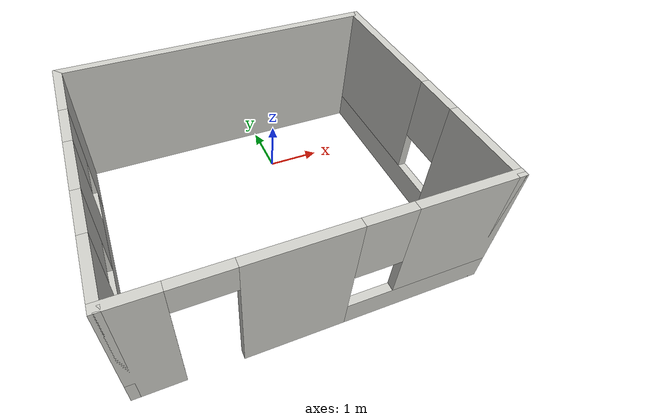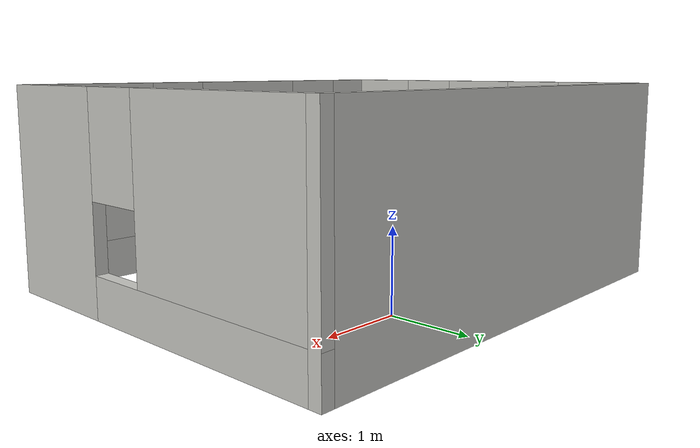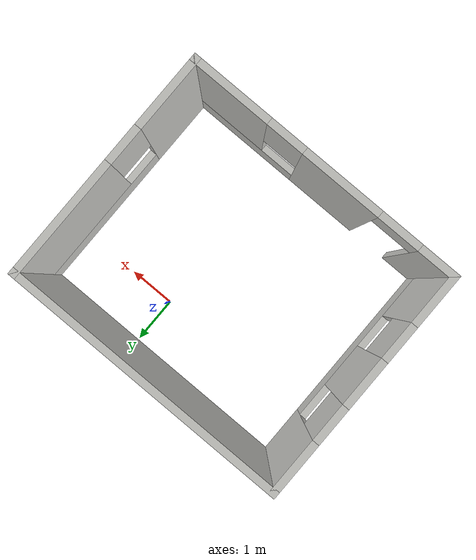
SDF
<?xml version='1.0'?>
<sdf version='1.6'>
  <model name='House'>
    <pose frame=''>-0.705 -1.305 0 0 -0 0</pose>
    <link name='Wall_0'>
      <pose frame=''>0 -2.425 0 0 -0 0</pose>
      <visual name='Wall_0_Visual_0'>
        <pose frame=''>-2.57683 0 1.25 0 -0 0</pose>
        <geometry>
          <box>
            <size>0.846347 0.15 2.5</size>
          </box>
        </geometry>
        <material>
          <script>
            <uri>file://media/materials/scripts/gazebo.material</uri>
            <name>Gazebo/CeilingTiled</name>
          </script>
          <ambient>0.435294 0.796078 0.67451 1</ambient>
        </material>
      </visual>
      <collision name='Wall_0_Collision_0'>
        <geometry>
          <box>
            <size>0.846347 0.15 2.5</size>
          </box>
        </geometry>
        <pose frame=''>-2.57683 0 1.25 0 -0 0</pose>
      </collision>
      <visual name='Wall_0_Visual_1'>
        <pose frame=''>-0.402153 0 1.25 0 -0 0</pose>
        <geometry>
          <box>
            <size>1.703 0.15 2.5</size>
          </box>
        </geometry>
        <material>
          <script>
            <uri>file://media/materials/scripts/gazebo.material</uri>
            <name>Gazebo/CeilingTiled</name>
          </script>
          <ambient>0.435294 0.796078 0.67451 1</ambient>
        </material>
      </visual>
      <collision name='Wall_0_Collision_1'>
        <geometry>
          <box>
            <size>1.703 0.15 2.5</size>
          </box>
        </geometry>
        <pose frame=''>-0.402153 0 1.25 0 -0 0</pose>
      </collision>
      <visual name='Wall_0_Visual_2'>
        <pose frame=''>1.72467 0 0.25 0 -0 0</pose>
        <geometry>
          <box>
            <size>2.55065 0.15 0.5</size>
          </box>
        </geometry>
        <material>
          <script>
            <uri>file://media/materials/scripts/gazebo.material</uri>
            <name>Gazebo/CeilingTiled</name>
          </script>
          <ambient>0.435294 0.796078 0.67451 1</ambient>
        </material>
      </visual>
      <collision name='Wall_0_Collision_2'>
        <geometry>
          <box>
            <size>2.55065 0.15 0.5</size>
          </box>
        </geometry>
        <pose frame=''>1.72467 0 0.25 0 -0 0</pose>
      </collision>
      <visual name='Wall_0_Visual_3'>
        <pose frame=''>2.12467 0 1.5 0 -0 0</pose>
        <geometry>
          <box>
            <size>1.75065 0.15 2</size>
          </box>
        </geometry>
        <material>
          <script>
            <uri>file://media/materials/scripts/gazebo.material</uri>
            <name>Gazebo/CeilingTiled</name>
          </script>
          <ambient>0.435294 0.796078 0.67451 1</ambient>
        </material>
      </visual>
      <collision name='Wall_0_Collision_3'>
        <geometry>
          <box>
            <size>1.75065 0.15 2</size>
          </box>
        </geometry>
        <pose frame=''>2.12467 0 1.5 0 -0 0</pose>
      </collision>
      <visual name='Wall_0_Visual_4'>
        <pose frame=''>0.849347 0 1.9 0 -0 0</pose>
        <geometry>
          <box>
            <size>0.8 0.15 1.2</size>
          </box>
        </geometry>
        <material>
          <script>
            <uri>file://media/materials/scripts/gazebo.material</uri>
            <name>Gazebo/CeilingTiled</name>
          </script>
          <ambient>0.435294 0.796078 0.67451 1</ambient>
        </material>
      </visual>
      <collision name='Wall_0_Collision_4'>
        <geometry>
          <box>
            <size>0.8 0.15 1.2</size>
          </box>
        </geometry>
        <pose frame=''>0.849347 0 1.9 0 -0 0</pose>
      </collision>
      <visual name='Wall_0_Visual_5'>
        <pose frame=''>-1.70365 0 2.25 0 -0 0</pose>
        <geometry>
          <box>
            <size>0.9 0.15 0.5</size>
          </box>
        </geometry>
        <material>
          <script>
            <uri>file://media/materials/scripts/gazebo.material</uri>
            <name>Gazebo/CeilingTiled</name>
          </script>
          <ambient>0.435294 0.796078 0.67451 1</ambient>
        </material>
      </visual>
      <collision name='Wall_0_Collision_5'>
        <geometry>
          <box>
            <size>0.9 0.15 0.5</size>
          </box>
        </geometry>
        <pose frame=''>-1.70365 0 2.25 0 -0 0</pose>
      </collision>
    </link>
    <link name='Wall_1'>
      <pose frame=''>2.925 0 0 0 -0 1.5708</pose>
      <visual name='Wall_1_Visual_0'>
        <pose frame=''>-1.69181 0 1.25 0 -0 0</pose>
        <geometry>
          <box>
            <size>1.61638 0.15 2.5</size>
          </box>
        </geometry>
        <material>
          <script>
            <uri>file://media/materials/scripts/gazebo.material</uri>
            <name>Gazebo/CeilingTiled</name>
          </script>
          <ambient>0.996078 0.47451 0.0196078 1</ambient>
        </material>
      </visual>
      <collision name='Wall_1_Collision_0'>
        <geometry>
          <box>
            <size>1.61638 0.15 2.5</size>
          </box>
        </geometry>
        <pose frame=''>-1.69181 0 1.25 0 -0 0</pose>
      </collision>
      <visual name='Wall_1_Visual_1'>
        <pose frame=''>0.808191 0 0.25 0 -0 0</pose>
        <geometry>
          <box>
            <size>3.38362 0.15 0.5</size>
          </box>
        </geometry>
        <material>
          <script>
            <uri>file://media/materials/scripts/gazebo.material</uri>
            <name>Gazebo/CeilingTiled</name>
          </script>
          <ambient>0.996078 0.47451 0.0196078 1</ambient>
        </material>
      </visual>
      <collision name='Wall_1_Collision_1'>
        <geometry>
          <box>
            <size>3.38362 0.15 0.5</size>
          </box>
        </geometry>
        <pose frame=''>0.808191 0 0.25 0 -0 0</pose>
      </collision>
      <visual name='Wall_1_Visual_2'>
        <pose frame=''>1.20819 0 1.5 0 -0 0</pose>
        <geometry>
          <box>
            <size>2.58362 0.15 2</size>
          </box>
        </geometry>
        <material>
          <script>
            <uri>file://media/materials/scripts/gazebo.material</uri>
            <name>Gazebo/CeilingTiled</name>
          </script>
          <ambient>0.996078 0.47451 0.0196078 1</ambient>
        </material>
      </visual>
      <collision name='Wall_1_Collision_2'>
        <geometry>
          <box>
            <size>2.58362 0.15 2</size>
          </box>
        </geometry>
        <pose frame=''>1.20819 0 1.5 0 -0 0</pose>
      </collision>
      <visual name='Wall_1_Visual_3'>
        <pose frame=''>-0.483617 0 1.9 0 -0 0</pose>
        <geometry>
          <box>
            <size>0.8 0.15 1.2</size>
          </box>
        </geometry>
        <material>
          <script>
            <uri>file://media/materials/scripts/gazebo.material</uri>
            <name>Gazebo/CeilingTiled</name>
          </script>
          <ambient>0.996078 0.47451 0.0196078 1</ambient>
        </material>
      </visual>
      <collision name='Wall_1_Collision_3'>
        <geometry>
          <box>
            <size>0.8 0.15 1.2</size>
          </box>
        </geometry>
        <pose frame=''>-0.483617 0 1.9 0 -0 0</pose>
      </collision>
    </link>
    <link name='Wall_2'>
      <collision name='Wall_2_Collision'>
        <geometry>
          <box>
            <size>6 0.15 2.5</size>
          </box>
        </geometry>
        <pose frame=''>0 0 1.25 0 -0 0</pose>
      </collision>
      <visual name='Wall_2_Visual'>
        <pose frame=''>0 0 1.25 0 -0 0</pose>
        <geometry>
          <box>
            <size>6 0.15 2.5</size>
          </box>
        </geometry>
        <material>
          <script>
            <uri>file://media/materials/scripts/gazebo.material</uri>
            <name>Gazebo/CeilingTiled</name>
          </script>
          <ambient>1 1 1 1</ambient>
        </material>
      </visual>
      <pose frame=''>0 2.425 0 0 -0 3.14159</pose>
    </link>
    <link name='Wall_4'>
      <pose frame=''>-2.925 0 0 0 0 -1.5708</pose>
      <visual name='Wall_4_Visual_0'>
        <pose frame=''>-1.90043 0 1.25 0 -0 0</pose>
        <geometry>
          <box>
            <size>1.19914 0.15 2.5</size>
          </box>
        </geometry>
        <material>
          <script>
            <uri>file://media/materials/scripts/gazebo.material</uri>
            <name>Gazebo/CeilingTiled</name>
          </script>
          <ambient>1 1 1 1</ambient>
        </material>
      </visual>
      <collision name='Wall_4_Collision_0'>
        <geometry>
          <box>
            <size>1.19914 0.15 2.5</size>
          </box>
        </geometry>
        <pose frame=''>-1.90043 0 1.25 0 -0 0</pose>
      </collision>
      <visual name='Wall_4_Visual_1'>
        <pose frame=''>0.599571 0 0.25 0 -0 0</pose>
        <geometry>
          <box>
            <size>3.80086 0.15 0.5</size>
          </box>
        </geometry>
        <material>
          <script>
            <uri>file://media/materials/scripts/gazebo.material</uri>
            <name>Gazebo/CeilingTiled</name>
          </script>
          <ambient>1 1 1 1</ambient>
        </material>
      </visual>
      <collision name='Wall_4_Collision_1'>
        <geometry>
          <box>
            <size>3.80086 0.15 0.5</size>
          </box>
        </geometry>
        <pose frame=''>0.599571 0 0.25 0 -0 0</pose>
      </collision>
      <visual name='Wall_4_Visual_2'>
        <pose frame=''>0.019143 0 1.5 0 -0 0</pose>
        <geometry>
          <box>
            <size>1.04 0.15 2</size>
          </box>
        </geometry>
        <material>
          <script>
            <uri>file://media/materials/scripts/gazebo.material</uri>
            <name>Gazebo/CeilingTiled</name>
          </script>
          <ambient>1 1 1 1</ambient>
        </material>
      </visual>
      <collision name='Wall_4_Collision_2'>
        <geometry>
          <box>
            <size>1.04 0.15 2</size>
          </box>
        </geometry>
        <pose frame=''>0.019143 0 1.5 0 -0 0</pose>
      </collision>
      <visual name='Wall_4_Visual_3'>
        <pose frame=''>1.91957 0 1.5 0 -0 0</pose>
        <geometry>
          <box>
            <size>1.16086 0.15 2</size>
          </box>
        </geometry>
        <material>
          <script>
            <uri>file://media/materials/scripts/gazebo.material</uri>
            <name>Gazebo/CeilingTiled</name>
          </script>
          <ambient>1 1 1 1</ambient>
        </material>
      </visual>
      <collision name='Wall_4_Collision_3'>
        <geometry>
          <box>
            <size>1.16086 0.15 2</size>
          </box>
        </geometry>
        <pose frame=''>1.91957 0 1.5 0 -0 0</pose>
      </collision>
      <visual name='Wall_4_Visual_4'>
        <pose frame=''>-0.900857 0 1.9 0 -0 0</pose>
        <geometry>
          <box>
            <size>0.8 0.15 1.2</size>
          </box>
        </geometry>
        <material>
          <script>
            <uri>file://media/materials/scripts/gazebo.material</uri>
            <name>Gazebo/CeilingTiled</name>
          </script>
          <ambient>1 1 1 1</ambient>
        </material>
      </visual>
      <collision name='Wall_4_Collision_4'>
        <geometry>
          <box>
            <size>0.8 0.15 1.2</size>
          </box>
        </geometry>
        <pose frame=''>-0.900857 0 1.9 0 -0 0</pose>
      </collision>
      <visual name='Wall_4_Visual_5'>
        <pose frame=''>0.939143 0 1.9 0 -0 0</pose>
        <geometry>
          <box>
            <size>0.8 0.15 1.2</size>
          </box>
        </geometry>
        <material>
          <script>
            <uri>file://media/materials/scripts/gazebo.material</uri>
            <name>Gazebo/CeilingTiled</name>
          </script>
          <ambient>1 1 1 1</ambient>
        </material>
      </visual>
      <collision name='Wall_4_Collision_5'>
        <geometry>
          <box>
            <size>0.8 0.15 1.2</size>
          </box>
        </geometry>
        <pose frame=''>0.939143 0 1.9 0 -0 0</pose>
      </collision>
    </link>
    <static>1</static>
  </model>
</sdf>
